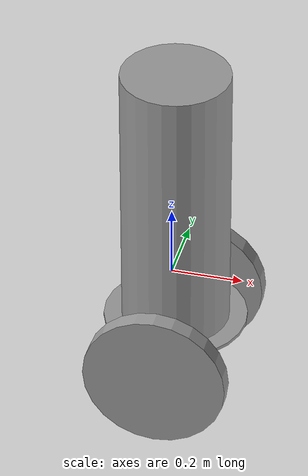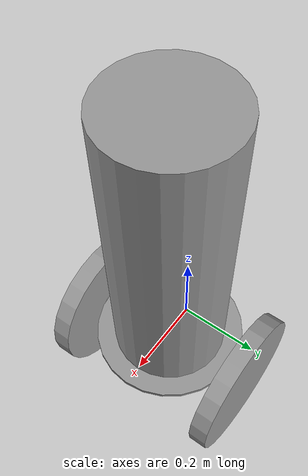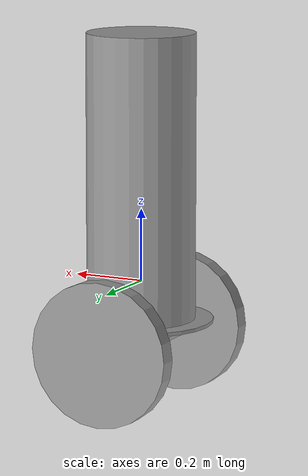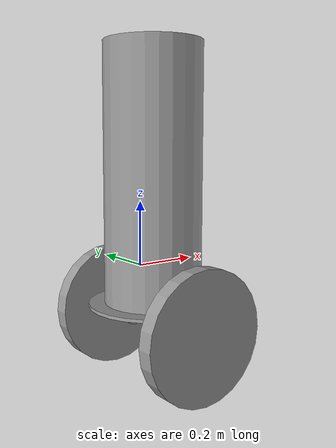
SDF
<?xml version='1.0'?>
<sdf version='1.6'>
  <model name='balancerobot'>
    <link name='link_0'>
      <inertial>
        <mass>1</mass>
        <inertia>
          <ixx>0.145833</ixx>
          <ixy>0</ixy>
          <ixz>0</ixz>
          <iyy>0.145833</iyy>
          <iyz>0</iyz>
          <izz>0.125</izz>
        </inertia>
        <pose frame=''>0 0 0 0 -0 0</pose>
      </inertial>
      <pose frame=''>0.020222 -0.037562 -0.115563 0 -0 0</pose>
      <gravity>1</gravity>
      <self_collide>0</self_collide>
      <kinematic>0</kinematic>
      <enable_wind>0</enable_wind>
      <visual name='visual'>
        <pose frame=''>0 0 0 0 -0 0</pose>
        <geometry>
          <cylinder>
            <radius>0.2</radius>
            <length>0.01</length>
          </cylinder>
        </geometry>
        <material>
          <lighting>1</lighting>
          <script>
            <uri>file://media/materials/scripts/gazebo.material</uri>
            <name>Gazebo/Grey</name>
          </script>
          <shader type='vertex'>
            <normal_map>__default__</normal_map>
          </shader>
          <ambient>0.3 0.3 0.3 1</ambient>
          <diffuse>0.7 0.7 0.7 1</diffuse>
          <specular>0.01 0.01 0.01 1</specular>
          <emissive>0 0 0 1</emissive>
        </material>
        <transparency>0</transparency>
        <cast_shadows>1</cast_shadows>
      </visual>
      <collision name='collision'>
        <laser_retro>0</laser_retro>
        <max_contacts>10</max_contacts>
        <pose frame=''>0 0 0 0 -0 0</pose>
        <geometry>
          <cylinder>
            <radius>0.2</radius>
            <length>0.01</length>
          </cylinder>
        </geometry>
        <surface>
          <friction>
            <ode>
              <mu>1</mu>
              <mu2>1</mu2>
              <fdir1>0 0 0</fdir1>
              <slip1>0</slip1>
              <slip2>0</slip2>
            </ode>
            <torsional>
              <coefficient>1</coefficient>
              <patch_radius>0</patch_radius>
              <surface_radius>0</surface_radius>
              <use_patch_radius>1</use_patch_radius>
              <ode>
                <slip>0</slip>
              </ode>
            </torsional>
          </friction>
          <bounce>
            <restitution_coefficient>0</restitution_coefficient>
            <threshold>1e+06</threshold>
          </bounce>
          <contact>
            <collide_without_contact>0</collide_without_contact>
            <collide_without_contact_bitmask>1</collide_without_contact_bitmask>
            <collide_bitmask>1</collide_bitmask>
            <ode>
              <soft_cfm>0</soft_cfm>
              <soft_erp>0.2</soft_erp>
              <kp>1e+13</kp>
              <kd>1</kd>
              <max_vel>0.01</max_vel>
              <min_depth>0</min_depth>
            </ode>
            <bullet>
              <split_impulse>1</split_impulse>
              <split_impulse_penetration_threshold>-0.01</split_impulse_penetration_threshold>
              <soft_cfm>0</soft_cfm>
              <soft_erp>0.2</soft_erp>
              <kp>1e+13</kp>
              <kd>1</kd>
            </bullet>
          </contact>
        </surface>
      </collision>
    </link>
    <link name='link_1'>
      <inertial>
        <mass>1</mass>
        <inertia>
          <ixx>0.145833</ixx>
          <ixy>0</ixy>
          <ixz>0</ixz>
          <iyy>0.145833</iyy>
          <iyz>0</iyz>
          <izz>0.125</izz>
        </inertia>
        <pose frame=''>0 0 0 0 -0 0</pose>
      </inertial>
      <pose frame=''>0.020222 -0.187562 -0.165183 1.5707 -0 0</pose>
      <gravity>1</gravity>
      <self_collide>0</self_collide>
      <kinematic>0</kinematic>
      <enable_wind>0</enable_wind>
      <visual name='visual'>
        <pose frame=''>0 0 0 0 -0 0</pose>
        <geometry>
          <cylinder>
            <radius>0.045</radius>
            <length>0.11</length>
          </cylinder>
        </geometry>
        <material>
          <lighting>1</lighting>
          <script>
            <uri>file://media/materials/scripts/gazebo.material</uri>
            <name>Gazebo/Grey</name>
          </script>
          <shader type='vertex'>
            <normal_map>__default__</normal_map>
          </shader>
          <ambient>0.3 0.3 0.3 1</ambient>
          <diffuse>0.7 0.7 0.7 1</diffuse>
          <specular>0.01 0.01 0.01 1</specular>
          <emissive>0 0 0 1</emissive>
        </material>
        <transparency>0</transparency>
        <cast_shadows>1</cast_shadows>
      </visual>
      <collision name='collision'>
        <laser_retro>0</laser_retro>
        <max_contacts>10</max_contacts>
        <pose frame=''>0 0 0 0 -0 0</pose>
        <geometry>
          <cylinder>
            <radius>0.045</radius>
            <length>0.11</length>
          </cylinder>
        </geometry>
        <surface>
          <friction>
            <ode>
              <mu>1</mu>
              <mu2>1</mu2>
              <fdir1>0 0 0</fdir1>
              <slip1>0</slip1>
              <slip2>0</slip2>
            </ode>
            <torsional>
              <coefficient>1</coefficient>
              <patch_radius>0</patch_radius>
              <surface_radius>0</surface_radius>
              <use_patch_radius>1</use_patch_radius>
              <ode>
                <slip>0</slip>
              </ode>
            </torsional>
          </friction>
          <bounce>
            <restitution_coefficient>0</restitution_coefficient>
            <threshold>1e+06</threshold>
          </bounce>
          <contact>
            <collide_without_contact>0</collide_without_contact>
            <collide_without_contact_bitmask>1</collide_without_contact_bitmask>
            <collide_bitmask>1</collide_bitmask>
            <ode>
              <soft_cfm>0</soft_cfm>
              <soft_erp>0.2</soft_erp>
              <kp>1e+13</kp>
              <kd>1</kd>
              <max_vel>0.01</max_vel>
              <min_depth>0</min_depth>
            </ode>
            <bullet>
              <split_impulse>1</split_impulse>
              <split_impulse_penetration_threshold>-0.01</split_impulse_penetration_threshold>
              <soft_cfm>0</soft_cfm>
              <soft_erp>0.2</soft_erp>
              <kp>1e+13</kp>
              <kd>1</kd>
            </bullet>
          </contact>
        </surface>
      </collision>
    </link>
    <link name='link_1_clone'>
      <inertial>
        <mass>1</mass>
        <inertia>
          <ixx>0.145833</ixx>
          <ixy>0</ixy>
          <ixz>0</ixz>
          <iyy>0.145833</iyy>
          <iyz>0</iyz>
          <izz>0.125</izz>
        </inertia>
        <pose frame=''>0 0 0 0 -0 0</pose>
      </inertial>
      <pose frame=''>0.020222 0.112438 -0.165563 1.5707 -0 0</pose>
      <gravity>1</gravity>
      <self_collide>0</self_collide>
      <kinematic>0</kinematic>
      <enable_wind>0</enable_wind>
      <visual name='visual'>
        <pose frame=''>0 0 0 0 -0 0</pose>
        <geometry>
          <cylinder>
            <radius>0.045</radius>
            <length>0.11</length>
          </cylinder>
        </geometry>
        <material>
          <lighting>1</lighting>
          <script>
            <uri>file://media/materials/scripts/gazebo.material</uri>
            <name>Gazebo/Grey</name>
          </script>
          <shader type='vertex'>
            <normal_map>__default__</normal_map>
          </shader>
          <ambient>0.3 0.3 0.3 1</ambient>
          <diffuse>0.7 0.7 0.7 1</diffuse>
          <specular>0.01 0.01 0.01 1</specular>
          <emissive>0 0 0 1</emissive>
        </material>
        <transparency>0</transparency>
        <cast_shadows>1</cast_shadows>
      </visual>
      <collision name='collision'>
        <laser_retro>0</laser_retro>
        <max_contacts>10</max_contacts>
        <pose frame=''>0 0 0 0 -0 0</pose>
        <geometry>
          <cylinder>
            <radius>0.045</radius>
            <length>0.11</length>
          </cylinder>
        </geometry>
        <surface>
          <friction>
            <ode>
              <mu>1</mu>
              <mu2>1</mu2>
              <fdir1>0 0 0</fdir1>
              <slip1>0</slip1>
              <slip2>0</slip2>
            </ode>
            <torsional>
              <coefficient>1</coefficient>
              <patch_radius>0</patch_radius>
              <surface_radius>0</surface_radius>
              <use_patch_radius>1</use_patch_radius>
              <ode>
                <slip>0</slip>
              </ode>
            </torsional>
          </friction>
          <bounce>
            <restitution_coefficient>0</restitution_coefficient>
            <threshold>1e+06</threshold>
          </bounce>
          <contact>
            <collide_without_contact>0</collide_without_contact>
            <collide_without_contact_bitmask>1</collide_without_contact_bitmask>
            <collide_bitmask>1</collide_bitmask>
            <ode>
              <soft_cfm>0</soft_cfm>
              <soft_erp>0.2</soft_erp>
              <kp>1e+13</kp>
              <kd>1</kd>
              <max_vel>0.01</max_vel>
              <min_depth>0</min_depth>
            </ode>
            <bullet>
              <split_impulse>1</split_impulse>
              <split_impulse_penetration_threshold>-0.01</split_impulse_penetration_threshold>
              <soft_cfm>0</soft_cfm>
              <soft_erp>0.2</soft_erp>
              <kp>1e+13</kp>
              <kd>1</kd>
            </bullet>
          </contact>
        </surface>
      </collision>
    </link>
    <link name='link_2'>
      <inertial>
        <mass>1</mass>
        <inertia>
          <ixx>0.145833</ixx>
          <ixy>0</ixy>
          <ixz>0</ixz>
          <iyy>0.145833</iyy>
          <iyz>0</iyz>
          <izz>0.125</izz>
        </inertia>
        <pose frame=''>0 0 0 0 -0 0</pose>
      </inertial>
      <pose frame=''>0.020222 -0.267562 -0.165175 1.5707 -0 0</pose>
      <gravity>1</gravity>
      <self_collide>0</self_collide>
      <kinematic>0</kinematic>
      <enable_wind>0</enable_wind>
      <visual name='visual'>
        <pose frame=''>0 0 0 0 -0 0</pose>
        <geometry>
          <cylinder>
            <radius>0.2</radius>
            <length>0.05</length>
          </cylinder>
        </geometry>
        <material>
          <lighting>1</lighting>
          <script>
            <uri>file://media/materials/scripts/gazebo.material</uri>
            <name>Gazebo/Grey</name>
          </script>
          <shader type='vertex'>
            <normal_map>__default__</normal_map>
          </shader>
          <ambient>0.3 0.3 0.3 1</ambient>
          <diffuse>0.7 0.7 0.7 1</diffuse>
          <specular>0.01 0.01 0.01 1</specular>
          <emissive>0 0 0 1</emissive>
        </material>
        <transparency>0</transparency>
        <cast_shadows>1</cast_shadows>
      </visual>
      <collision name='collision'>
        <laser_retro>0</laser_retro>
        <max_contacts>10</max_contacts>
        <pose frame=''>0 0 0 0 -0 0</pose>
        <geometry>
          <cylinder>
            <radius>0.2</radius>
            <length>0.05</length>
          </cylinder>
        </geometry>
        <surface>
          <friction>
            <ode>
              <mu>1</mu>
              <mu2>1</mu2>
              <fdir1>0 0 0</fdir1>
              <slip1>0</slip1>
              <slip2>0</slip2>
            </ode>
            <torsional>
              <coefficient>1</coefficient>
              <patch_radius>0</patch_radius>
              <surface_radius>0</surface_radius>
              <use_patch_radius>1</use_patch_radius>
              <ode>
                <slip>0</slip>
              </ode>
            </torsional>
          </friction>
          <bounce>
            <restitution_coefficient>0</restitution_coefficient>
            <threshold>1e+06</threshold>
          </bounce>
          <contact>
            <collide_without_contact>0</collide_without_contact>
            <collide_without_contact_bitmask>1</collide_without_contact_bitmask>
            <collide_bitmask>1</collide_bitmask>
            <ode>
              <soft_cfm>0</soft_cfm>
              <soft_erp>0.2</soft_erp>
              <kp>1e+13</kp>
              <kd>1</kd>
              <max_vel>0.01</max_vel>
              <min_depth>0</min_depth>
            </ode>
            <bullet>
              <split_impulse>1</split_impulse>
              <split_impulse_penetration_threshold>-0.01</split_impulse_penetration_threshold>
              <soft_cfm>0</soft_cfm>
              <soft_erp>0.2</soft_erp>
              <kp>1e+13</kp>
              <kd>1</kd>
            </bullet>
          </contact>
        </surface>
      </collision>
    </link>
    <link name='link_2_clone'>
      <inertial>
        <mass>1</mass>
        <inertia>
          <ixx>0.145833</ixx>
          <ixy>0</ixy>
          <ixz>0</ixz>
          <iyy>0.145833</iyy>
          <iyz>0</iyz>
          <izz>0.125</izz>
        </inertia>
        <pose frame=''>0 0 0 0 -0 0</pose>
      </inertial>
      <pose frame=''>0.020222 0.192462 -0.165563 1.5707 -0 0</pose>
      <gravity>1</gravity>
      <self_collide>0</self_collide>
      <kinematic>0</kinematic>
      <enable_wind>0</enable_wind>
      <visual name='visual'>
        <pose frame=''>0 0 0 0 -0 0</pose>
        <geometry>
          <cylinder>
            <radius>0.2</radius>
            <length>0.05</length>
          </cylinder>
        </geometry>
        <material>
          <lighting>1</lighting>
          <script>
            <uri>file://media/materials/scripts/gazebo.material</uri>
            <name>Gazebo/Grey</name>
          </script>
          <shader type='vertex'>
            <normal_map>__default__</normal_map>
          </shader>
          <ambient>0.3 0.3 0.3 1</ambient>
          <diffuse>0.7 0.7 0.7 1</diffuse>
          <specular>0.01 0.01 0.01 1</specular>
          <emissive>0 0 0 1</emissive>
        </material>
        <transparency>0</transparency>
        <cast_shadows>1</cast_shadows>
      </visual>
      <collision name='collision'>
        <laser_retro>0</laser_retro>
        <max_contacts>10</max_contacts>
        <pose frame=''>0 0 0 0 -0 0</pose>
        <geometry>
          <cylinder>
            <radius>0.2</radius>
            <length>0.05</length>
          </cylinder>
        </geometry>
        <surface>
          <friction>
            <ode>
              <mu>1</mu>
              <mu2>1</mu2>
              <fdir1>0 0 0</fdir1>
              <slip1>0</slip1>
              <slip2>0</slip2>
            </ode>
            <torsional>
              <coefficient>1</coefficient>
              <patch_radius>0</patch_radius>
              <surface_radius>0</surface_radius>
              <use_patch_radius>1</use_patch_radius>
              <ode>
                <slip>0</slip>
              </ode>
            </torsional>
          </friction>
          <bounce>
            <restitution_coefficient>0</restitution_coefficient>
            <threshold>1e+06</threshold>
          </bounce>
          <contact>
            <collide_without_contact>0</collide_without_contact>
            <collide_without_contact_bitmask>1</collide_without_contact_bitmask>
            <collide_bitmask>1</collide_bitmask>
            <ode>
              <soft_cfm>0</soft_cfm>
              <soft_erp>0.2</soft_erp>
              <kp>1e+13</kp>
              <kd>1</kd>
              <max_vel>0.01</max_vel>
              <min_depth>0</min_depth>
            </ode>
            <bullet>
              <split_impulse>1</split_impulse>
              <split_impulse_penetration_threshold>-0.01</split_impulse_penetration_threshold>
              <soft_cfm>0</soft_cfm>
              <soft_erp>0.2</soft_erp>
              <kp>1e+13</kp>
              <kd>1</kd>
            </bullet>
          </contact>
        </surface>
      </collision>
    </link>
    <link name='link_3'>
      <inertial>
        <mass>1</mass>
        <inertia>
          <ixx>0.145833</ixx>
          <ixy>0</ixy>
          <ixz>0</ixz>
          <iyy>0.145833</iyy>
          <iyz>0</iyz>
          <izz>0.125</izz>
        </inertia>
        <pose frame=''>0 0 0 0 -0 0</pose>
      </inertial>
      <pose frame=''>0.020222 -0.037562 0.277437 0 -0 0</pose>
      <gravity>1</gravity>
      <self_collide>0</self_collide>
      <kinematic>0</kinematic>
      <enable_wind>0</enable_wind>
      <visual name='visual'>
        <pose frame=''>0 0 0 0 -0 0</pose>
        <geometry>
          <cylinder>
            <radius>0.15</radius>
            <length>0.8</length>
          </cylinder>
        </geometry>
        <material>
          <lighting>1</lighting>
          <script>
            <uri>file://media/materials/scripts/gazebo.material</uri>
            <name>Gazebo/Grey</name>
          </script>
          <shader type='vertex'>
            <normal_map>__default__</normal_map>
          </shader>
          <ambient>0.3 0.3 0.3 1</ambient>
          <diffuse>0.7 0.7 0.7 1</diffuse>
          <specular>0.01 0.01 0.01 1</specular>
          <emissive>0 0 0 1</emissive>
        </material>
        <transparency>0</transparency>
        <cast_shadows>1</cast_shadows>
      </visual>
      <collision name='collision'>
        <laser_retro>0</laser_retro>
        <max_contacts>10</max_contacts>
        <pose frame=''>0 0 0 0 -0 0</pose>
        <geometry>
          <cylinder>
            <radius>0.15</radius>
            <length>0.8</length>
          </cylinder>
        </geometry>
        <surface>
          <friction>
            <ode>
              <mu>1</mu>
              <mu2>1</mu2>
              <fdir1>0 0 0</fdir1>
              <slip1>0</slip1>
              <slip2>0</slip2>
            </ode>
            <torsional>
              <coefficient>1</coefficient>
              <patch_radius>0</patch_radius>
              <surface_radius>0</surface_radius>
              <use_patch_radius>1</use_patch_radius>
              <ode>
                <slip>0</slip>
              </ode>
            </torsional>
          </friction>
          <bounce>
            <restitution_coefficient>0</restitution_coefficient>
            <threshold>1e+06</threshold>
          </bounce>
          <contact>
            <collide_without_contact>0</collide_without_contact>
            <collide_without_contact_bitmask>1</collide_without_contact_bitmask>
            <collide_bitmask>1</collide_bitmask>
            <ode>
              <soft_cfm>0</soft_cfm>
              <soft_erp>0.2</soft_erp>
              <kp>1e+13</kp>
              <kd>1</kd>
              <max_vel>0.01</max_vel>
              <min_depth>0</min_depth>
            </ode>
            <bullet>
              <split_impulse>1</split_impulse>
              <split_impulse_penetration_threshold>-0.01</split_impulse_penetration_threshold>
              <soft_cfm>0</soft_cfm>
              <soft_erp>0.2</soft_erp>
              <kp>1e+13</kp>
              <kd>1</kd>
            </bullet>
          </contact>
        </surface>
      </collision>
    </link>
    <joint name='link_0_JOINT_2' type='fixed'>
      <parent>link_0</parent>
      <child>link_1</child>
      <pose frame=''>0 0 0 0 -0 0</pose>
      <physics>
        <ode>
          <limit>
            <cfm>0</cfm>
            <erp>0.2</erp>
          </limit>
          <suspension>
            <cfm>0</cfm>
            <erp>0.2</erp>
          </suspension>
        </ode>
      </physics>
    </joint>
    <joint name='link_0_JOINT_3' type='fixed'>
      <parent>link_0</parent>
      <child>link_1_clone</child>
      <pose frame=''>0 0 0 0 -0 0</pose>
      <physics>
        <ode>
          <limit>
            <cfm>0</cfm>
            <erp>0.2</erp>
          </limit>
          <suspension>
            <cfm>0</cfm>
            <erp>0.2</erp>
          </suspension>
        </ode>
      </physics>
    </joint>
    <joint name='link_0_JOINT_6' type='fixed'>
      <parent>link_0</parent>
      <child>link_3</child>
      <pose frame=''>0 0 0 0 -0 0</pose>
      <physics>
        <ode>
          <limit>
            <cfm>0</cfm>
            <erp>0.2</erp>
          </limit>
          <suspension>
            <cfm>0</cfm>
            <erp>0.2</erp>
          </suspension>
        </ode>
      </physics>
    </joint>
    <joint name='link_1_JOINT_4' type='revolute'>
      <parent>link_1</parent>
      <child>link_2</child>
      <pose frame=''>-0 0 -0.02 0 -0 0</pose>
      <axis>
        <xyz>0 0 1</xyz>
        <use_parent_model_frame>0</use_parent_model_frame>
        <limit>
          <lower>-1.79769e+308</lower>
          <upper>1.79769e+308</upper>
          <effort>-1</effort>
          <velocity>-1</velocity>
        </limit>
        <dynamics>
          <spring_reference>0</spring_reference>
          <spring_stiffness>0</spring_stiffness>
          <damping>0</damping>
        </dynamics>
      </axis>
      <physics>
        <ode>
          <limit>
            <cfm>0</cfm>
            <erp>0.2</erp>
          </limit>
          <suspension>
            <cfm>0</cfm>
            <erp>0.2</erp>
          </suspension>
        </ode>
      </physics>
    </joint>
    <joint name='link_1_clone_JOINT_5' type='revolute'>
      <parent>link_1_clone</parent>
      <child>link_2_clone</child>
      <pose frame=''>0 0 0 0 -0 0</pose>
      <axis>
        <xyz>1 0 0</xyz>
        <use_parent_model_frame>0</use_parent_model_frame>
        <limit>
          <lower>-1.79769e+308</lower>
          <upper>1.79769e+308</upper>
          <effort>-1</effort>
          <velocity>-1</velocity>
        </limit>
        <dynamics>
          <spring_reference>0</spring_reference>
          <spring_stiffness>0</spring_stiffness>
          <damping>0</damping>
        </dynamics>
      </axis>
      <physics>
        <ode>
          <limit>
            <cfm>0</cfm>
            <erp>0.2</erp>
          </limit>
          <suspension>
            <cfm>0</cfm>
            <erp>0.2</erp>
          </suspension>
        </ode>
      </physics>
    </joint>
    <static>0</static>
    <allow_auto_disable>1</allow_auto_disable>
  </model>
</sdf>
